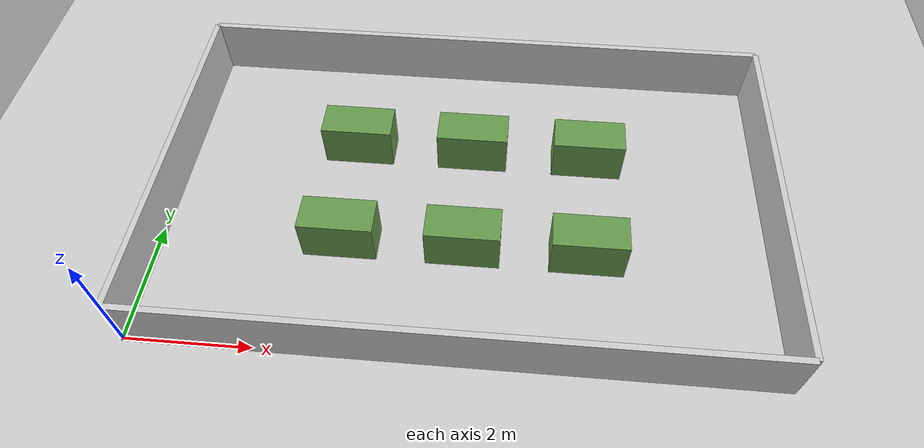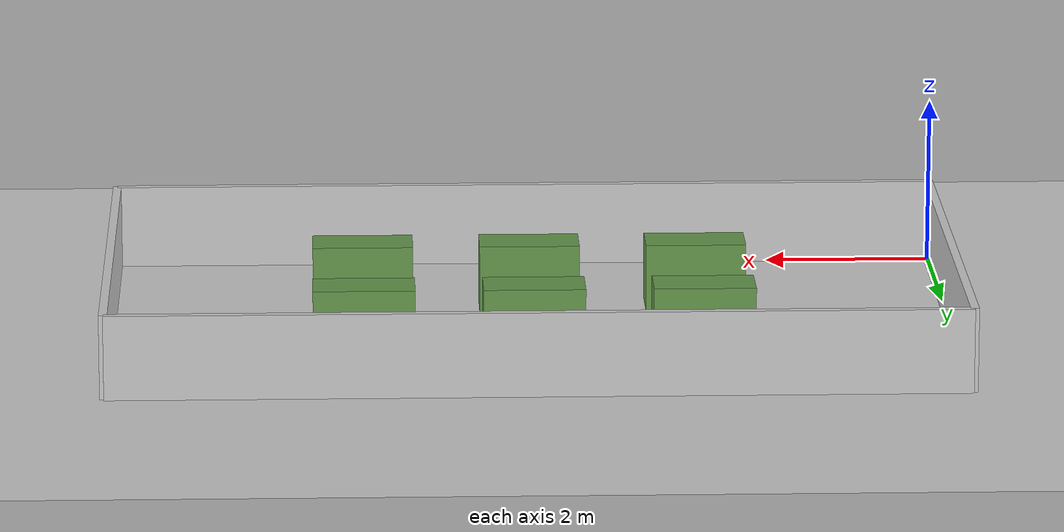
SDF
<?xml version="1.0"?>
<sdf version="1.7">
  <world name="greenhouse">

    <include>
      <uri>model://sun</uri>
    </include>
    <include>
      <uri>model://ground_plane</uri>
    </include>

    <physics type="ode">
      <max_step_size>0.001</max_step_size>
      <real_time_factor>1</real_time_factor>
      <real_time_update_rate>1000</real_time_update_rate>
    </physics>
    <scene>
      <ambient>0.6 0.6 0.6 1</ambient>
      <background>0.53 0.81 0.92 1</background>
      <shadows>0</shadows>
    </scene>

    <!-- Greenhouse floor: 10 m x 6 m, origin at (5, 3) so robot spawns near (1,1) -->

    <!-- North wall -->
    <model name="wall_north">
      <static>true</static>
      <pose>5 6 0.5 0 0 0</pose>
      <link name="link">
        <collision name="col"><geometry><box><size>10 0.1 1</size></box></geometry></collision>
        <visual name="vis">
          <geometry><box><size>10 0.1 1</size></box></geometry>
          <material><ambient>0.8 0.8 0.8 1</ambient></material>
        </visual>
      </link>
    </model>

    <!-- South wall -->
    <model name="wall_south">
      <static>true</static>
      <pose>5 0 0.5 0 0 0</pose>
      <link name="link">
        <collision name="col"><geometry><box><size>10 0.1 1</size></box></geometry></collision>
        <visual name="vis">
          <geometry><box><size>10 0.1 1</size></box></geometry>
          <material><ambient>0.8 0.8 0.8 1</ambient></material>
        </visual>
      </link>
    </model>

    <!-- West wall -->
    <model name="wall_west">
      <static>true</static>
      <pose>0 3 0.5 0 0 0</pose>
      <link name="link">
        <collision name="col"><geometry><box><size>0.1 6 1</size></box></geometry></collision>
        <visual name="vis">
          <geometry><box><size>0.1 6 1</size></box></geometry>
          <material><ambient>0.8 0.8 0.8 1</ambient></material>
        </visual>
      </link>
    </model>

    <!-- East wall -->
    <model name="wall_east">
      <static>true</static>
      <pose>10 3 0.5 0 0 0</pose>
      <link name="link">
        <collision name="col"><geometry><box><size>0.1 6 1</size></box></geometry></collision>
        <visual name="vis">
          <geometry><box><size>0.1 6 1</size></box></geometry>
          <material><ambient>0.8 0.8 0.8 1</ambient></material>
        </visual>
      </link>
    </model>

    <!-- Plant tables: 1.2 m x 0.6 m, 0.8 m tall, arranged in two rows -->
    <!-- Row A (y=2) -->
    <model name="table_a1">
      <static>true</static>
      <pose>3 2 0.4 0 0 0</pose>
      <link name="link">
        <collision name="col"><geometry><box><size>1.2 0.6 0.8</size></box></geometry></collision>
        <visual name="vis">
          <geometry><box><size>1.2 0.6 0.8</size></box></geometry>
          <material><ambient>0.4 0.6 0.3 1</ambient></material>
        </visual>
      </link>
    </model>

    <model name="table_a2">
      <static>true</static>
      <pose>5 2 0.4 0 0 0</pose>
      <link name="link">
        <collision name="col"><geometry><box><size>1.2 0.6 0.8</size></box></geometry></collision>
        <visual name="vis">
          <geometry><box><size>1.2 0.6 0.8</size></box></geometry>
          <material><ambient>0.4 0.6 0.3 1</ambient></material>
        </visual>
      </link>
    </model>

    <model name="table_a3">
      <static>true</static>
      <pose>7 2 0.4 0 0 0</pose>
      <link name="link">
        <collision name="col"><geometry><box><size>1.2 0.6 0.8</size></box></geometry></collision>
        <visual name="vis">
          <geometry><box><size>1.2 0.6 0.8</size></box></geometry>
          <material><ambient>0.4 0.6 0.3 1</ambient></material>
        </visual>
      </link>
    </model>

    <!-- Row B (y=4) -->
    <model name="table_b1">
      <static>true</static>
      <pose>3 4 0.4 0 0 0</pose>
      <link name="link">
        <collision name="col"><geometry><box><size>1.2 0.6 0.8</size></box></geometry></collision>
        <visual name="vis">
          <geometry><box><size>1.2 0.6 0.8</size></box></geometry>
          <material><ambient>0.4 0.6 0.3 1</ambient></material>
        </visual>
      </link>
    </model>

    <model name="table_b2">
      <static>true</static>
      <pose>5 4 0.4 0 0 0</pose>
      <link name="link">
        <collision name="col"><geometry><box><size>1.2 0.6 0.8</size></box></geometry></collision>
        <visual name="vis">
          <geometry><box><size>1.2 0.6 0.8</size></box></geometry>
          <material><ambient>0.4 0.6 0.3 1</ambient></material>
        </visual>
      </link>
    </model>

    <model name="table_b3">
      <static>true</static>
      <pose>7 4 0.4 0 0 0</pose>
      <link name="link">
        <collision name="col"><geometry><box><size>1.2 0.6 0.8</size></box></geometry></collision>
        <visual name="vis">
          <geometry><box><size>1.2 0.6 0.8</size></box></geometry>
          <material><ambient>0.4 0.6 0.3 1</ambient></material>
        </visual>
      </link>
    </model>

  </world>
</sdf>
